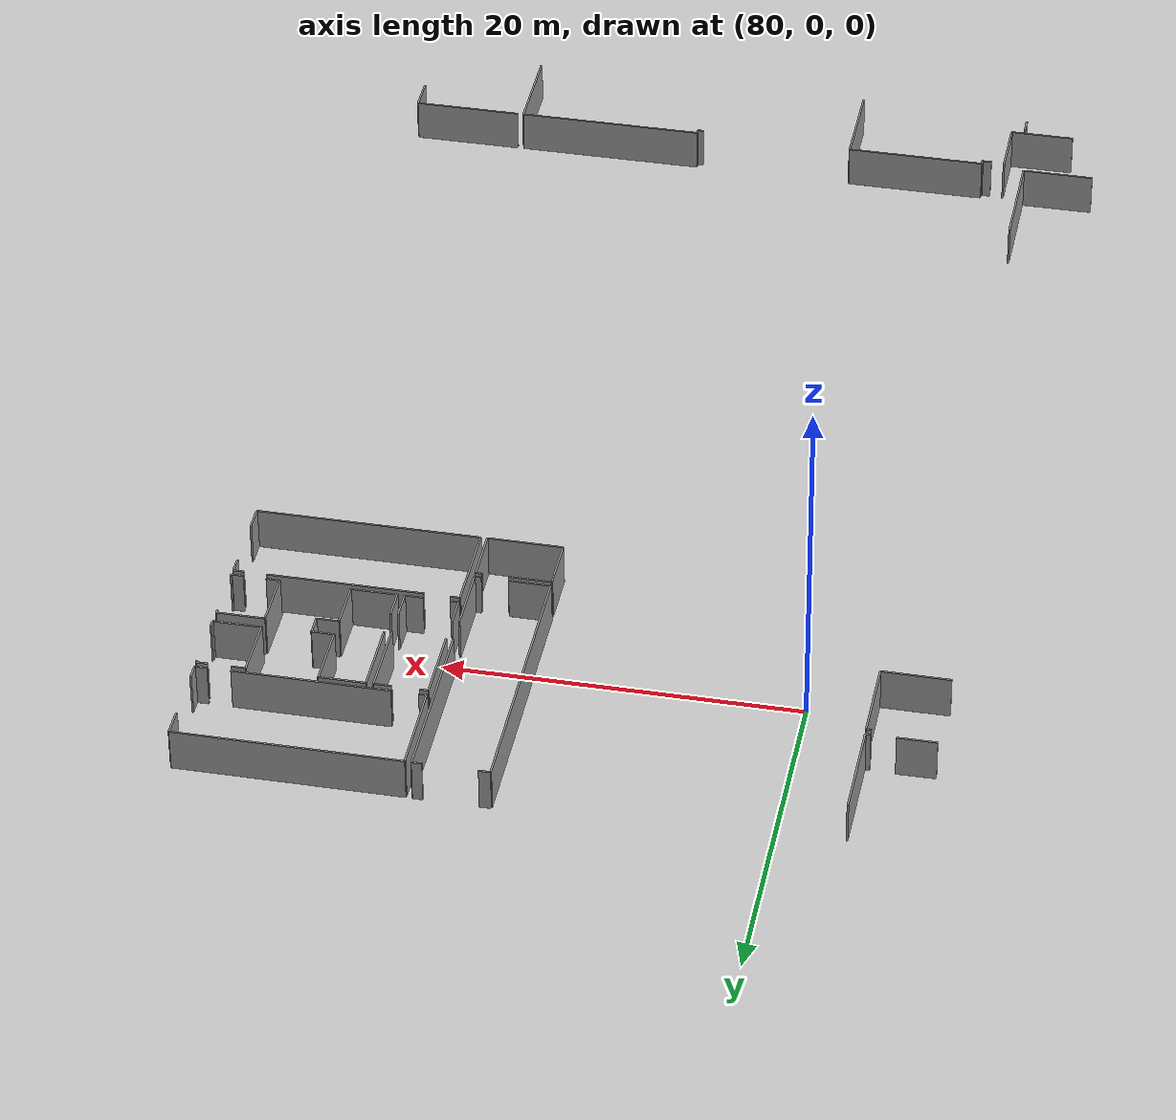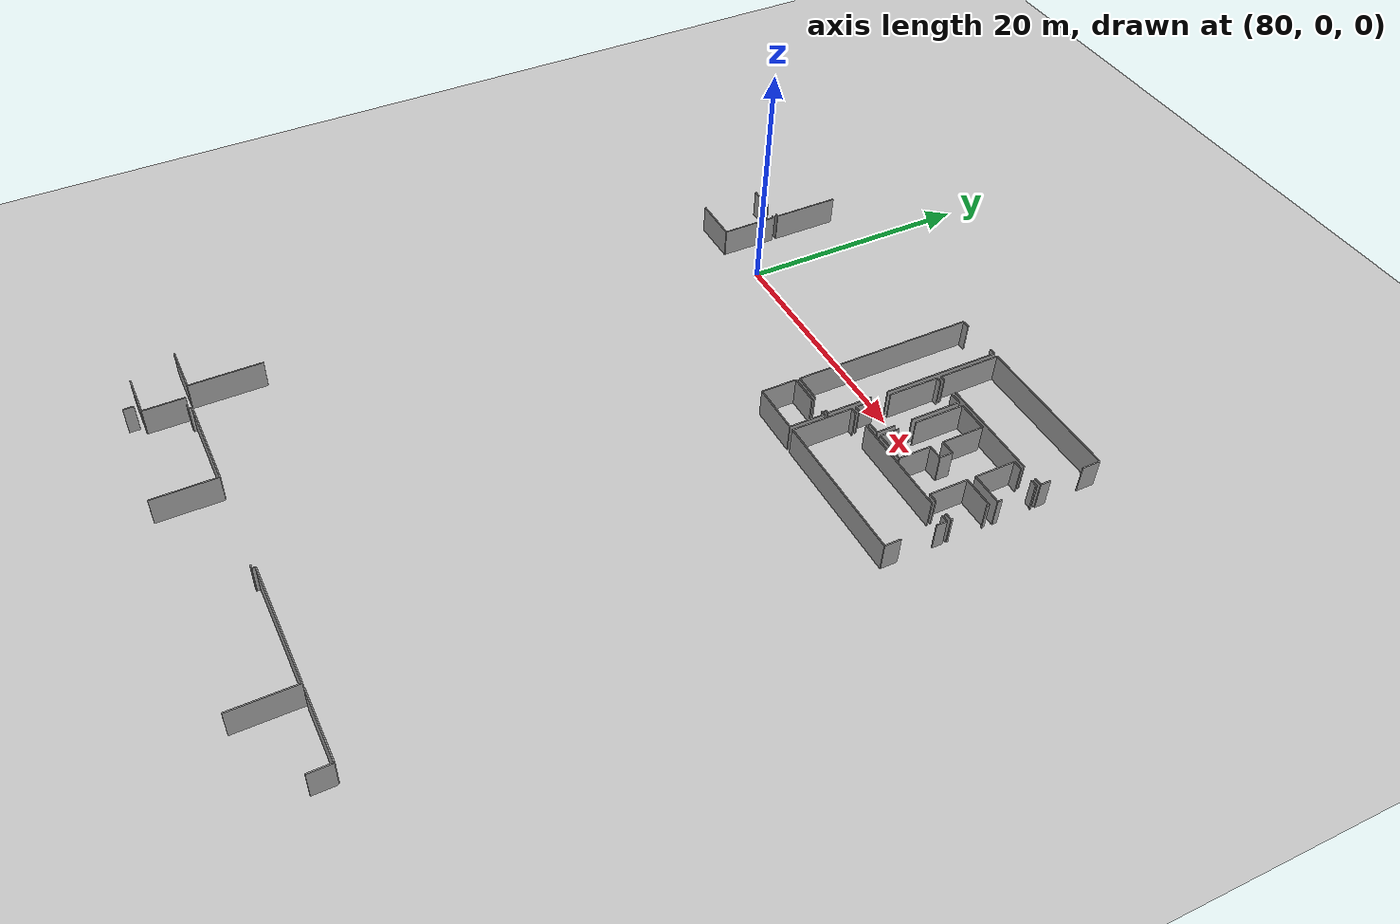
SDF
<sdf version="1.6">
 <world name="default">
  <model name="ground_plane">
   <static>1</static>
   <link name="link">
    <collision name="collision">
     <geometry><plane><normal>0 0 1</normal><size>100 100</size></plane></geometry>
     <surface><friction><ode><mu>100</mu><mu2>50</mu2></ode></friction></surface>
    </collision>
    <visual name="visual">
     <cast_shadows>0</cast_shadows>
     <geometry><plane><normal>0 0 1</normal><size>100 100</size></plane></geometry>
     <material>
      <script><uri>file://media/materials/scripts/gazebo.material</uri><name>Gazebo/Grey</name></script>
     </material>
    </visual>
   </link>
  </model>
  <model name="0510035520_A_40_1_103">
   <static>1</static>
   <link name="Wall_1028">
    <collision name="Wall_1028_Collision">
     <geometry><box><size>6.20046827114 0.1 2.5</size></box></geometry>
     <pose>3.10023413557 0 1.25 0 0 0</pose>
    </collision>
    <visual name="Wall_1028_Visual">
     <pose>3.10023413557 0 1.25 0 0 0</pose>
     <geometry><box><size>6.20046827114 0.1 2.5</size></box></geometry>
     <material>
      <script><uri>file://media/materials/scripts/gazebo.material</uri><name>Gazebo/Grey</name></script>
      <ambient>1 1 1 1</ambient>
     </material>
    </visual>
    <pose>218.241762425 -117.510421888 0 0 0 0.0</pose>
   </link>
   <link name="Wall_1029">
    <collision name="Wall_1029_Collision">
     <geometry><box><size>1.9091249421 0.1 2.5</size></box></geometry>
     <pose>0.95456247105 0 1.25 0 0 0</pose>
    </collision>
    <visual name="Wall_1029_Visual">
     <pose>0.95456247105 0 1.25 0 0 0</pose>
     <geometry><box><size>1.9091249421 0.1 2.5</size></box></geometry>
     <material>
      <script><uri>file://media/materials/scripts/gazebo.material</uri><name>Gazebo/Grey</name></script>
      <ambient>1 1 1 1</ambient>
     </material>
    </visual>
    <pose>224.442230697 -117.510421888 0 0 0 -1.57079632679</pose>
   </link>
   <link name="Wall_1033">
    <collision name="Wall_1033_Collision">
     <geometry><box><size>0.373601690345 0.1 2.5</size></box></geometry>
     <pose>0.186800845172 0 1.25 0 0 0</pose>
    </collision>
    <visual name="Wall_1033_Visual">
     <pose>0.186800845172 0 1.25 0 0 0</pose>
     <geometry><box><size>0.373601690345 0.1 2.5</size></box></geometry>
     <material>
      <script><uri>file://media/materials/scripts/gazebo.material</uri><name>Gazebo/Grey</name></script>
      <ambient>1 1 1 1</ambient>
     </material>
    </visual>
    <pose>206.805286768 -117.8157499 0 0 0 0.0</pose>
   </link>
   <link name="Wall_1034">
    <collision name="Wall_1034_Collision">
     <geometry><box><size>0.292891542566 0.1 2.5</size></box></geometry>
     <pose>0.146445771283 0 1.25 0 0 0</pose>
    </collision>
    <visual name="Wall_1034_Visual">
     <pose>0.146445771283 0 1.25 0 0 0</pose>
     <geometry><box><size>0.292891542566 0.1 2.5</size></box></geometry>
     <material>
      <script><uri>file://media/materials/scripts/gazebo.material</uri><name>Gazebo/Grey</name></script>
      <ambient>1 1 1 1</ambient>
     </material>
    </visual>
    <pose>207.178888459 -117.8157499 0 0 0 1.57079632679</pose>
   </link>
   <link name="Wall_1035">
    <collision name="Wall_1035_Collision">
     <geometry><box><size>10.7060234389 0.1 2.5</size></box></geometry>
     <pose>5.35301171947 0 1.25 0 0 0</pose>
    </collision>
    <visual name="Wall_1035_Visual">
     <pose>5.35301171947 0 1.25 0 0 0</pose>
     <geometry><box><size>10.7060234389 0.1 2.5</size></box></geometry>
     <material>
      <script><uri>file://media/materials/scripts/gazebo.material</uri><name>Gazebo/Grey</name></script>
      <ambient>1 1 1 1</ambient>
     </material>
    </visual>
    <pose>207.178888459 -117.522858357 0 0 0 0.0</pose>
   </link>
   <link name="Wall_1036">
    <collision name="Wall_1036_Collision">
     <geometry><box><size>5.36595579977 0.1 2.5</size></box></geometry>
     <pose>2.68297789989 0 1.25 0 0 0</pose>
    </collision>
    <visual name="Wall_1036_Visual">
     <pose>2.68297789989 0 1.25 0 0 0</pose>
     <geometry><box><size>5.36595579977 0.1 2.5</size></box></geometry>
     <material>
      <script><uri>file://media/materials/scripts/gazebo.material</uri><name>Gazebo/Grey</name></script>
      <ambient>1 1 1 1</ambient>
     </material>
    </visual>
    <pose>217.884911898 -117.522858357 0 0 0 -1.57079632679</pose>
   </link>
   <link name="Wall_1040">
    <collision name="Wall_1040_Collision">
     <geometry><box><size>0.544412789259 0.1 2.5</size></box></geometry>
     <pose>0.272206394629 0 1.25 0 0 0</pose>
    </collision>
    <visual name="Wall_1040_Visual">
     <pose>0.272206394629 0 1.25 0 0 0</pose>
     <geometry><box><size>0.544412789259 0.1 2.5</size></box></geometry>
     <material>
      <script><uri>file://media/materials/scripts/gazebo.material</uri><name>Gazebo/Grey</name></script>
      <ambient>1 1 1 1</ambient>
     </material>
    </visual>
    <pose>189.239408379 -117.799760154 0 0 0 0.0</pose>
   </link>
   <link name="Wall_1041">
    <collision name="Wall_1041_Collision">
     <geometry><box><size>0.284515961193 0.1 2.5</size></box></geometry>
     <pose>0.142257980597 0 1.25 0 0 0</pose>
    </collision>
    <visual name="Wall_1041_Visual">
     <pose>0.142257980597 0 1.25 0 0 0</pose>
     <geometry><box><size>0.284515961193 0.1 2.5</size></box></geometry>
     <material>
      <script><uri>file://media/materials/scripts/gazebo.material</uri><name>Gazebo/Grey</name></script>
      <ambient>1 1 1 1</ambient>
     </material>
    </visual>
    <pose>189.783821169 -117.799760154 0 0 0 1.57079632679</pose>
   </link>
   <link name="Wall_1042">
    <collision name="Wall_1042_Collision">
     <geometry><box><size>8.0263450105 0.1 2.5</size></box></geometry>
     <pose>4.01317250525 0 1.25 0 0 0</pose>
    </collision>
    <visual name="Wall_1042_Visual">
     <pose>4.01317250525 0 1.25 0 0 0</pose>
     <geometry><box><size>8.0263450105 0.1 2.5</size></box></geometry>
     <material>
      <script><uri>file://media/materials/scripts/gazebo.material</uri><name>Gazebo/Grey</name></script>
      <ambient>1 1 1 1</ambient>
     </material>
    </visual>
    <pose>189.783821169 -117.515244193 0 0 0 0.0</pose>
   </link>
   <link name="Wall_1043">
    <collision name="Wall_1043_Collision">
     <geometry><box><size>5.36773243825 0.1 2.5</size></box></geometry>
     <pose>2.68386621912 0 1.25 0 0 0</pose>
    </collision>
    <visual name="Wall_1043_Visual">
     <pose>2.68386621912 0 1.25 0 0 0</pose>
     <geometry><box><size>5.36773243825 0.1 2.5</size></box></geometry>
     <material>
      <script><uri>file://media/materials/scripts/gazebo.material</uri><name>Gazebo/Grey</name></script>
      <ambient>1 1 1 1</ambient>
     </material>
    </visual>
    <pose>197.810166179 -117.515244193 0 0 0 -1.57079632679</pose>
   </link>
   <link name="Wall_1047">
    <collision name="Wall_1047_Collision">
     <geometry><box><size>0.880705071668 0.1 2.5</size></box></geometry>
     <pose>0.440352535834 0 1.25 0 0 0</pose>
    </collision>
    <visual name="Wall_1047_Visual">
     <pose>0.440352535834 0 1.25 0 0 0</pose>
     <geometry><box><size>0.880705071668 0.1 2.5</size></box></geometry>
     <material>
      <script><uri>file://media/materials/scripts/gazebo.material</uri><name>Gazebo/Grey</name></script>
      <ambient>1 1 1 1</ambient>
     </material>
    </visual>
    <pose>187.722159123 -121.533239002 0 0 0 -1.57079632679</pose>
   </link>
   <link name="Wall_1052">
    <collision name="Wall_1052_Collision">
     <geometry><box><size>3.45860749615 0.1 2.5</size></box></geometry>
     <pose>1.72930374807 0 1.25 0 0 0</pose>
    </collision>
    <visual name="Wall_1052_Visual">
     <pose>1.72930374807 0 1.25 0 0 0</pose>
     <geometry><box><size>3.45860749615 0.1 2.5</size></box></geometry>
     <material>
      <script><uri>file://media/materials/scripts/gazebo.material</uri><name>Gazebo/Grey</name></script>
      <ambient>1 1 1 1</ambient>
     </material>
    </visual>
    <pose>188.470377726 -117.686055292 0 0 0 -1.57079632679</pose>
   </link>
   <link name="Wall_1053">
    <collision name="Wall_1053_Collision">
     <geometry><box><size>3.70962113185 0.1 2.5</size></box></geometry>
     <pose>1.85481056592 0 1.25 0 0 0</pose>
    </collision>
    <visual name="Wall_1053_Visual">
     <pose>1.85481056592 0 1.25 0 0 0</pose>
     <geometry><box><size>3.70962113185 0.1 2.5</size></box></geometry>
     <material>
      <script><uri>file://media/materials/scripts/gazebo.material</uri><name>Gazebo/Grey</name></script>
      <ambient>1 1 1 1</ambient>
     </material>
    </visual>
    <pose>188.470377726 -121.144662788 0 0 0 3.14159265359</pose>
   </link>
   <link name="Wall_1130">
    <collision name="Wall_1130_Collision">
     <geometry><box><size>6.15148381038 0.1 2.5</size></box></geometry>
     <pose>3.07574190519 0 1.25 0 0 0</pose>
    </collision>
    <visual name="Wall_1130_Visual">
     <pose>3.07574190519 0 1.25 0 0 0</pose>
     <geometry><box><size>6.15148381038 0.1 2.5</size></box></geometry>
     <material>
      <script><uri>file://media/materials/scripts/gazebo.material</uri><name>Gazebo/Grey</name></script>
      <ambient>1 1 1 1</ambient>
     </material>
    </visual>
    <pose>187.222416101 -111.095741778 0 0 0 -1.57079632679</pose>
   </link>
   <link name="Wall_1131">
    <collision name="Wall_1131_Collision">
     <geometry><box><size>4.13880622585 0.1 2.5</size></box></geometry>
     <pose>2.06940311292 0 1.25 0 0 0</pose>
    </collision>
    <visual name="Wall_1131_Visual">
     <pose>2.06940311292 0 1.25 0 0 0</pose>
     <geometry><box><size>4.13880622585 0.1 2.5</size></box></geometry>
     <material>
      <script><uri>file://media/materials/scripts/gazebo.material</uri><name>Gazebo/Grey</name></script>
      <ambient>1 1 1 1</ambient>
     </material>
    </visual>
    <pose>187.222416101 -117.247225589 0 0 0 3.14159265359</pose>
   </link>
   <link name="Wall_1167">
    <collision name="Wall_1167_Collision">
     <geometry><box><size>0.280455073255 0.1 2.5</size></box></geometry>
     <pose>0.140227536627 0 1.25 0 0 0</pose>
    </collision>
    <visual name="Wall_1167_Visual">
     <pose>0.140227536627 0 1.25 0 0 0</pose>
     <geometry><box><size>0.280455073255 0.1 2.5</size></box></geometry>
     <material>
      <script><uri>file://media/materials/scripts/gazebo.material</uri><name>Gazebo/Grey</name></script>
      <ambient>1 1 1 1</ambient>
     </material>
    </visual>
    <pose>188.199567262 -65.0442573334 0 0 0 0.0</pose>
   </link>
   <link name="Wall_1168">
    <collision name="Wall_1168_Collision">
     <geometry><box><size>4.78524882456 0.1 2.5</size></box></geometry>
     <pose>2.39262441228 0 1.25 0 0 0</pose>
    </collision>
    <visual name="Wall_1168_Visual">
     <pose>2.39262441228 0 1.25 0 0 0</pose>
     <geometry><box><size>4.78524882456 0.1 2.5</size></box></geometry>
     <material>
      <script><uri>file://media/materials/scripts/gazebo.material</uri><name>Gazebo/Grey</name></script>
      <ambient>1 1 1 1</ambient>
     </material>
    </visual>
    <pose>188.480022335 -65.0442573334 0 0 0 -1.57079632679</pose>
   </link>
   <link name="Wall_1169">
    <collision name="Wall_1169_Collision">
     <geometry><box><size>3.85759882861 0.1 2.5</size></box></geometry>
     <pose>1.9287994143 0 1.25 0 0 0</pose>
    </collision>
    <visual name="Wall_1169_Visual">
     <pose>1.9287994143 0 1.25 0 0 0</pose>
     <geometry><box><size>3.85759882861 0.1 2.5</size></box></geometry>
     <material>
      <script><uri>file://media/materials/scripts/gazebo.material</uri><name>Gazebo/Grey</name></script>
      <ambient>1 1 1 1</ambient>
     </material>
    </visual>
    <pose>188.480022335 -69.829506158 0 0 0 3.13942146153</pose>
   </link>
   <link name="Wall_1172">
    <collision name="Wall_1172_Collision">
     <geometry><box><size>5.73930368462 0.1 2.5</size></box></geometry>
     <pose>2.86965184231 0 1.25 0 0 0</pose>
    </collision>
    <visual name="Wall_1172_Visual">
     <pose>2.86965184231 0 1.25 0 0 0</pose>
     <geometry><box><size>5.73930368462 0.1 2.5</size></box></geometry>
     <material>
      <script><uri>file://media/materials/scripts/gazebo.material</uri><name>Gazebo/Grey</name></script>
      <ambient>1 1 1 1</ambient>
     </material>
    </visual>
    <pose>188.467078255 -58.9130779627 0 0 0 -1.57079632679</pose>
   </link>
   <link name="Wall_1173">
    <collision name="Wall_1173_Collision">
     <geometry><box><size>0.292130126078 0.1 2.5</size></box></geometry>
     <pose>0.146065063039 0 1.25 0 0 0</pose>
    </collision>
    <visual name="Wall_1173_Visual">
     <pose>0.146065063039 0 1.25 0 0 0</pose>
     <geometry><box><size>0.292130126078 0.1 2.5</size></box></geometry>
     <material>
      <script><uri>file://media/materials/scripts/gazebo.material</uri><name>Gazebo/Grey</name></script>
      <ambient>1 1 1 1</ambient>
     </material>
    </visual>
    <pose>188.467078255 -64.6523816473 0 0 0 3.14159265359</pose>
   </link>
   <link name="Wall_1174">
    <collision name="Wall_1174_Collision">
     <geometry><box><size>2.19290664441 0.1 2.5</size></box></geometry>
     <pose>1.09645332221 0 1.25 0 0 0</pose>
    </collision>
    <visual name="Wall_1174_Visual">
     <pose>1.09645332221 0 1.25 0 0 0</pose>
     <geometry><box><size>2.19290664441 0.1 2.5</size></box></geometry>
     <material>
      <script><uri>file://media/materials/scripts/gazebo.material</uri><name>Gazebo/Grey</name></script>
      <ambient>1 1 1 1</ambient>
     </material>
    </visual>
    <pose>186.805667477 -64.6523816473 0 0 0 -3.13661584283</pose>
   </link>
   <link name="Wall_1175">
    <collision name="Wall_1175_Collision">
     <geometry><box><size>3.05353392428 0.1 2.5</size></box></geometry>
     <pose>1.52676696214 0 1.25 0 0 0</pose>
    </collision>
    <visual name="Wall_1175_Visual">
     <pose>1.52676696214 0 1.25 0 0 0</pose>
     <geometry><box><size>3.05353392428 0.1 2.5</size></box></geometry>
     <material>
      <script><uri>file://media/materials/scripts/gazebo.material</uri><name>Gazebo/Grey</name></script>
      <ambient>1 1 1 1</ambient>
     </material>
    </visual>
    <pose>207.179903681 -76.9746384858 0 0 0 1.57079632679</pose>
   </link>
   <link name="Wall_1176">
    <collision name="Wall_1176_Collision">
     <geometry><box><size>2.42257346083 0.1 2.5</size></box></geometry>
     <pose>1.21128673041 0 1.25 0 0 0</pose>
    </collision>
    <visual name="Wall_1176_Visual">
     <pose>1.21128673041 0 1.25 0 0 0</pose>
     <geometry><box><size>2.42257346083 0.1 2.5</size></box></geometry>
     <material>
      <script><uri>file://media/materials/scripts/gazebo.material</uri><name>Gazebo/Grey</name></script>
      <ambient>1 1 1 1</ambient>
     </material>
    </visual>
    <pose>207.179903681 -73.9211045615 0 0 0 0.0</pose>
   </link>
   <link name="Wall_1177">
    <collision name="Wall_1177_Collision">
     <geometry><box><size>0.359896193552 0.1 2.5</size></box></geometry>
     <pose>0.179948096776 0 1.25 0 0 0</pose>
    </collision>
    <visual name="Wall_1177_Visual">
     <pose>0.179948096776 0 1.25 0 0 0</pose>
     <geometry><box><size>0.359896193552 0.1 2.5</size></box></geometry>
     <material>
      <script><uri>file://media/materials/scripts/gazebo.material</uri><name>Gazebo/Grey</name></script>
      <ambient>1 1 1 1</ambient>
     </material>
    </visual>
    <pose>211.065919632 -73.9211045615 0 0 0 0.0</pose>
   </link>
   <link name="Wall_1178">
    <collision name="Wall_1178_Collision">
     <geometry><box><size>3.06038667267 0.1 2.5</size></box></geometry>
     <pose>1.53019333634 0 1.25 0 0 0</pose>
    </collision>
    <visual name="Wall_1178_Visual">
     <pose>1.53019333634 0 1.25 0 0 0</pose>
     <geometry><box><size>3.06038667267 0.1 2.5</size></box></geometry>
     <material>
      <script><uri>file://media/materials/scripts/gazebo.material</uri><name>Gazebo/Grey</name></script>
      <ambient>1 1 1 1</ambient>
     </material>
    </visual>
    <pose>211.425815826 -73.9211045615 0 0 0 -1.57079632679</pose>
   </link>
   <link name="Wall_1179">
    <collision name="Wall_1179_Collision">
     <geometry><box><size>4.24591767527 0.1 2.5</size></box></geometry>
     <pose>2.12295883763 0 1.25 0 0 0</pose>
    </collision>
    <visual name="Wall_1179_Visual">
     <pose>2.12295883763 0 1.25 0 0 0</pose>
     <geometry><box><size>4.24591767527 0.1 2.5</size></box></geometry>
     <material>
      <script><uri>file://media/materials/scripts/gazebo.material</uri><name>Gazebo/Grey</name></script>
      <ambient>1 1 1 1</ambient>
     </material>
    </visual>
    <pose>211.425815826 -76.9814912342 0 0 0 3.13997869122</pose>
   </link>
   <link name="Wall_1180">
    <collision name="Wall_1180_Collision">
     <geometry><box><size>15.5740128552 0.1 2.5</size></box></geometry>
     <pose>7.78700642762 0 1.25 0 0 0</pose>
    </collision>
    <visual name="Wall_1180_Visual">
     <pose>7.78700642762 0 1.25 0 0 0</pose>
     <geometry><box><size>15.5740128552 0.1 2.5</size></box></geometry>
     <material>
      <script><uri>file://media/materials/scripts/gazebo.material</uri><name>Gazebo/Grey</name></script>
      <ambient>1 1 1 1</ambient>
     </material>
    </visual>
    <pose>207.179142264 -73.5876041396 0 0 0 1.57079632679</pose>
   </link>
   <link name="Wall_1181">
    <collision name="Wall_1181_Collision">
     <geometry><box><size>0.649995875661 0.1 2.5</size></box></geometry>
     <pose>0.32499793783 0 1.25 0 0 0</pose>
    </collision>
    <visual name="Wall_1181_Visual">
     <pose>0.32499793783 0 1.25 0 0 0</pose>
     <geometry><box><size>0.649995875661 0.1 2.5</size></box></geometry>
     <material>
      <script><uri>file://media/materials/scripts/gazebo.material</uri><name>Gazebo/Grey</name></script>
      <ambient>1 1 1 1</ambient>
     </material>
    </visual>
    <pose>207.179142264 -58.0135912843 0 0 0 0.0</pose>
   </link>
   <link name="Wall_1182">
    <collision name="Wall_1182_Collision">
     <geometry><box><size>0.561925368494 0.1 2.5</size></box></geometry>
     <pose>0.280962684247 0 1.25 0 0 0</pose>
    </collision>
    <visual name="Wall_1182_Visual">
     <pose>0.280962684247 0 1.25 0 0 0</pose>
     <geometry><box><size>0.561925368494 0.1 2.5</size></box></geometry>
     <material>
      <script><uri>file://media/materials/scripts/gazebo.material</uri><name>Gazebo/Grey</name></script>
      <ambient>1 1 1 1</ambient>
     </material>
    </visual>
    <pose>210.847646906 -58.0135912843 0 0 0 0.0</pose>
   </link>
   <link name="Wall_1183">
    <collision name="Wall_1183_Collision">
     <geometry><box><size>10.1545040958 0.1 2.5</size></box></geometry>
     <pose>5.07725204789 0 1.25 0 0 0</pose>
    </collision>
    <visual name="Wall_1183_Visual">
     <pose>5.07725204789 0 1.25 0 0 0</pose>
     <geometry><box><size>10.1545040958 0.1 2.5</size></box></geometry>
     <material>
      <script><uri>file://media/materials/scripts/gazebo.material</uri><name>Gazebo/Grey</name></script>
      <ambient>1 1 1 1</ambient>
     </material>
    </visual>
    <pose>211.409572274 -58.0135912843 0 0 0 -1.57079632679</pose>
   </link>
   <link name="Wall_1184">
    <collision name="Wall_1184_Collision">
     <geometry><box><size>3.92611722007 0.1 2.5</size></box></geometry>
     <pose>1.96305861003 0 1.25 0 0 0</pose>
    </collision>
    <visual name="Wall_1184_Visual">
     <pose>1.96305861003 0 1.25 0 0 0</pose>
     <geometry><box><size>3.92611722007 0.1 2.5</size></box></geometry>
     <material>
      <script><uri>file://media/materials/scripts/gazebo.material</uri><name>Gazebo/Grey</name></script>
      <ambient>1 1 1 1</ambient>
     </material>
    </visual>
    <pose>211.409572274 -69.6767152493 0 0 0 -1.57079632679</pose>
   </link>
   <link name="Wall_1185">
    <collision name="Wall_1185_Collision">
     <geometry><box><size>0.374616912329 0.1 2.5</size></box></geometry>
     <pose>0.187308456165 0 1.25 0 0 0</pose>
    </collision>
    <visual name="Wall_1185_Visual">
     <pose>0.187308456165 0 1.25 0 0 0</pose>
     <geometry><box><size>0.374616912329 0.1 2.5</size></box></geometry>
     <material>
      <script><uri>file://media/materials/scripts/gazebo.material</uri><name>Gazebo/Grey</name></script>
      <ambient>1 1 1 1</ambient>
     </material>
    </visual>
    <pose>211.409572274 -73.6028324693 0 0 0 3.14159265359</pose>
   </link>
   <link name="Wall_1186">
    <collision name="Wall_1186_Collision">
     <geometry><box><size>2.33861342322 0.1 2.5</size></box></geometry>
     <pose>1.16930671161 0 1.25 0 0 0</pose>
    </collision>
    <visual name="Wall_1186_Visual">
     <pose>1.16930671161 0 1.25 0 0 0</pose>
     <geometry><box><size>2.33861342322 0.1 2.5</size></box></geometry>
     <material>
      <script><uri>file://media/materials/scripts/gazebo.material</uri><name>Gazebo/Grey</name></script>
      <ambient>1 1 1 1</ambient>
     </material>
    </visual>
    <pose>209.517706106 -73.6028324693 0 0 0 3.13508091581</pose>
   </link>
   <link name="Wall_1187">
    <collision name="Wall_1187_Collision">
     <geometry><box><size>1.66674069327 0.1 2.5</size></box></geometry>
     <pose>0.833370346635 0 1.25 0 0 0</pose>
    </collision>
    <visual name="Wall_1187_Visual">
     <pose>0.833370346635 0 1.25 0 0 0</pose>
     <geometry><box><size>1.66674069327 0.1 2.5</size></box></geometry>
     <material>
      <script><uri>file://media/materials/scripts/gazebo.material</uri><name>Gazebo/Grey</name></script>
      <ambient>1 1 1 1</ambient>
     </material>
    </visual>
    <pose>211.794087601 -71.3003090082 0 0 0 1.57079632679</pose>
   </link>
   <link name="Wall_1188">
    <collision name="Wall_1188_Collision">
     <geometry><box><size>4.33880495682 0.1 2.5</size></box></geometry>
     <pose>2.16940247841 0 1.25 0 0 0</pose>
    </collision>
    <visual name="Wall_1188_Visual">
     <pose>2.16940247841 0 1.25 0 0 0</pose>
     <geometry><box><size>4.33880495682 0.1 2.5</size></box></geometry>
     <material>
      <script><uri>file://media/materials/scripts/gazebo.material</uri><name>Gazebo/Grey</name></script>
      <ambient>1 1 1 1</ambient>
     </material>
    </visual>
    <pose>211.794087601 -68.1493137734 0 0 0 1.57079632679</pose>
   </link>
   <link name="Wall_1189">
    <collision name="Wall_1189_Collision">
     <geometry><box><size>0.49415930102 0.1 2.5</size></box></geometry>
     <pose>0.24707965051 0 1.25 0 0 0</pose>
    </collision>
    <visual name="Wall_1189_Visual">
     <pose>0.24707965051 0 1.25 0 0 0</pose>
     <geometry><box><size>0.49415930102 0.1 2.5</size></box></geometry>
     <material>
      <script><uri>file://media/materials/scripts/gazebo.material</uri><name>Gazebo/Grey</name></script>
      <ambient>1 1 1 1</ambient>
     </material>
    </visual>
    <pose>211.794087601 -63.8105088166 0 0 0 0.0</pose>
   </link>
   <link name="Wall_1190">
    <collision name="Wall_1190_Collision">
     <geometry><box><size>1.0038007373 0.1 2.5</size></box></geometry>
     <pose>0.501900368652 0 1.25 0 0 0</pose>
    </collision>
    <visual name="Wall_1190_Visual">
     <pose>0.501900368652 0 1.25 0 0 0</pose>
     <geometry><box><size>1.0038007373 0.1 2.5</size></box></geometry>
     <material>
      <script><uri>file://media/materials/scripts/gazebo.material</uri><name>Gazebo/Grey</name></script>
      <ambient>1 1 1 1</ambient>
     </material>
    </visual>
    <pose>213.782653663 -63.8105088166 0 0 0 0.0</pose>
   </link>
   <link name="Wall_1191">
    <collision name="Wall_1191_Collision">
     <geometry><box><size>4.37459153178 0.1 2.5</size></box></geometry>
     <pose>2.18729576589 0 1.25 0 0 0</pose>
    </collision>
    <visual name="Wall_1191_Visual">
     <pose>2.18729576589 0 1.25 0 0 0</pose>
     <geometry><box><size>4.37459153178 0.1 2.5</size></box></geometry>
     <material>
      <script><uri>file://media/materials/scripts/gazebo.material</uri><name>Gazebo/Grey</name></script>
      <ambient>1 1 1 1</ambient>
     </material>
    </visual>
    <pose>214.786454401 -63.8105088166 0 0 0 -1.57079632679</pose>
   </link>
   <link name="Wall_1192">
    <collision name="Wall_1192_Collision">
     <geometry><box><size>1.62638561938 0.1 2.5</size></box></geometry>
     <pose>0.81319280969 0 1.25 0 0 0</pose>
    </collision>
    <visual name="Wall_1192_Visual">
     <pose>0.81319280969 0 1.25 0 0 0</pose>
     <geometry><box><size>1.62638561938 0.1 2.5</size></box></geometry>
     <material>
      <script><uri>file://media/materials/scripts/gazebo.material</uri><name>Gazebo/Grey</name></script>
      <ambient>1 1 1 1</ambient>
     </material>
    </visual>
    <pose>214.786454401 -69.6888979131 0 0 0 -1.57079632679</pose>
   </link>
   <link name="Wall_1193">
    <collision name="Wall_1193_Collision">
     <geometry><box><size>1.02765845394 0.1 2.5</size></box></geometry>
     <pose>0.513829226972 0 1.25 0 0 0</pose>
    </collision>
    <visual name="Wall_1193_Visual">
     <pose>0.513829226972 0 1.25 0 0 0</pose>
     <geometry><box><size>1.02765845394 0.1 2.5</size></box></geometry>
     <material>
      <script><uri>file://media/materials/scripts/gazebo.material</uri><name>Gazebo/Grey</name></script>
      <ambient>1 1 1 1</ambient>
     </material>
    </visual>
    <pose>214.786454401 -71.3152835325 0 0 0 3.14159265359</pose>
   </link>
   <link name="Wall_1194">
    <collision name="Wall_1194_Collision">
     <geometry><box><size>0.462687419496 0.1 2.5</size></box></geometry>
     <pose>0.231343709748 0 1.25 0 0 0</pose>
    </collision>
    <visual name="Wall_1194_Visual">
     <pose>0.231343709748 0 1.25 0 0 0</pose>
     <geometry><box><size>0.462687419496 0.1 2.5</size></box></geometry>
     <material>
      <script><uri>file://media/materials/scripts/gazebo.material</uri><name>Gazebo/Grey</name></script>
      <ambient>1 1 1 1</ambient>
     </material>
    </visual>
    <pose>212.25905927 -71.3152835325 0 0 0 3.14159265359</pose>
   </link>
   <link name="Wall_1195">
    <collision name="Wall_1195_Collision">
     <geometry><box><size>0.0151477448101 0.1 2.5</size></box></geometry>
     <pose>0.00757387240506 0 1.25 0 0 0</pose>
    </collision>
    <visual name="Wall_1195_Visual">
     <pose>0.00757387240506 0 1.25 0 0 0</pose>
     <geometry><box><size>0.0151477448101 0.1 2.5</size></box></geometry>
     <material>
      <script><uri>file://media/materials/scripts/gazebo.material</uri><name>Gazebo/Grey</name></script>
      <ambient>1 1 1 1</ambient>
     </material>
    </visual>
    <pose>211.79637185 -71.3152835325 0 0 0 1.72217177053</pose>
   </link>
   <link name="Wall_1196">
    <collision name="Wall_1196_Collision">
     <geometry><box><size>5.29971256528 0.1 2.5</size></box></geometry>
     <pose>2.64985628264 0 1.25 0 0 0</pose>
    </collision>
    <visual name="Wall_1196_Visual">
     <pose>2.64985628264 0 1.25 0 0 0</pose>
     <geometry><box><size>5.29971256528 0.1 2.5</size></box></geometry>
     <material>
      <script><uri>file://media/materials/scripts/gazebo.material</uri><name>Gazebo/Grey</name></script>
      <ambient>1 1 1 1</ambient>
     </material>
    </visual>
    <pose>211.799671322 -76.9746384858 0 0 0 1.57079632679</pose>
   </link>
   <link name="Wall_1197">
    <collision name="Wall_1197_Collision">
     <geometry><box><size>0.524869766055 0.1 2.5</size></box></geometry>
     <pose>0.262434883027 0 1.25 0 0 0</pose>
    </collision>
    <visual name="Wall_1197_Visual">
     <pose>0.262434883027 0 1.25 0 0 0</pose>
     <geometry><box><size>0.524869766055 0.1 2.5</size></box></geometry>
     <material>
      <script><uri>file://media/materials/scripts/gazebo.material</uri><name>Gazebo/Grey</name></script>
      <ambient>1 1 1 1</ambient>
     </material>
    </visual>
    <pose>211.799671322 -71.6749259205 0 0 0 0.0</pose>
   </link>
   <link name="Wall_1198">
    <collision name="Wall_1198_Collision">
     <geometry><box><size>8.75502058997 0.1 2.5</size></box></geometry>
     <pose>4.37751029499 0 1.25 0 0 0</pose>
    </collision>
    <visual name="Wall_1198_Visual">
     <pose>4.37751029499 0 1.25 0 0 0</pose>
     <geometry><box><size>8.75502058997 0.1 2.5</size></box></geometry>
     <material>
      <script><uri>file://media/materials/scripts/gazebo.material</uri><name>Gazebo/Grey</name></script>
      <ambient>1 1 1 1</ambient>
     </material>
    </visual>
    <pose>213.798897215 -71.6749259205 0 0 0 0.0</pose>
   </link>
   <link name="Wall_1199">
    <collision name="Wall_1199_Collision">
     <geometry><box><size>0.606595135818 0.1 2.5</size></box></geometry>
     <pose>0.303297567909 0 1.25 0 0 0</pose>
    </collision>
    <visual name="Wall_1199_Visual">
     <pose>0.303297567909 0 1.25 0 0 0</pose>
     <geometry><box><size>0.606595135818 0.1 2.5</size></box></geometry>
     <material>
      <script><uri>file://media/materials/scripts/gazebo.material</uri><name>Gazebo/Grey</name></script>
      <ambient>1 1 1 1</ambient>
     </material>
    </visual>
    <pose>223.835635561 -71.6749259205 0 0 0 0.0</pose>
   </link>
   <link name="Wall_1200">
    <collision name="Wall_1200_Collision">
     <geometry><box><size>0.894156762965 0.1 2.5</size></box></geometry>
     <pose>0.447078381482 0 1.25 0 0 0</pose>
    </collision>
    <visual name="Wall_1200_Visual">
     <pose>0.447078381482 0 1.25 0 0 0</pose>
     <geometry><box><size>0.894156762965 0.1 2.5</size></box></geometry>
     <material>
      <script><uri>file://media/materials/scripts/gazebo.material</uri><name>Gazebo/Grey</name></script>
      <ambient>1 1 1 1</ambient>
     </material>
    </visual>
    <pose>224.442230697 -71.6749259205 0 0 0 -1.57079632679</pose>
   </link>
   <link name="Wall_1201">
    <collision name="Wall_1201_Collision">
     <geometry><box><size>1.40252917177 0.1 2.5</size></box></geometry>
     <pose>0.701264585885 0 1.25 0 0 0</pose>
    </collision>
    <visual name="Wall_1201_Visual">
     <pose>0.701264585885 0 1.25 0 0 0</pose>
     <geometry><box><size>1.40252917177 0.1 2.5</size></box></geometry>
     <material>
      <script><uri>file://media/materials/scripts/gazebo.material</uri><name>Gazebo/Grey</name></script>
      <ambient>1 1 1 1</ambient>
     </material>
    </visual>
    <pose>224.442230697 -75.5677946206 0 0 0 -1.57079632679</pose>
   </link>
   <link name="Wall_1202">
    <collision name="Wall_1202_Collision">
     <geometry><box><size>12.6425601109 0.1 2.5</size></box></geometry>
     <pose>6.32128005544 0 1.25 0 0 0</pose>
    </collision>
    <visual name="Wall_1202_Visual">
     <pose>6.32128005544 0 1.25 0 0 0</pose>
     <geometry><box><size>12.6425601109 0.1 2.5</size></box></geometry>
     <material>
      <script><uri>file://media/materials/scripts/gazebo.material</uri><name>Gazebo/Grey</name></script>
      <ambient>1 1 1 1</ambient>
     </material>
    </visual>
    <pose>224.442230697 -76.9703237924 0 0 0 -3.14125137038</pose>
   </link>
   <link name="Wall_1203">
    <collision name="Wall_1203_Collision">
     <geometry><box><size>12.7062645542 0.1 2.5</size></box></geometry>
     <pose>6.35313227708 0 1.25 0 0 0</pose>
    </collision>
    <visual name="Wall_1203_Visual">
     <pose>6.35313227708 0 1.25 0 0 0</pose>
     <geometry><box><size>12.7062645542 0.1 2.5</size></box></geometry>
     <material>
      <script><uri>file://media/materials/scripts/gazebo.material</uri><name>Gazebo/Grey</name></script>
      <ambient>1 1 1 1</ambient>
     </material>
    </visual>
    <pose>211.768960857 -58.0313576691 0 0 0 0.0</pose>
   </link>
   <link name="Wall_1204">
    <collision name="Wall_1204_Collision">
     <geometry><box><size>1.55303583099 0.1 2.5</size></box></geometry>
     <pose>0.776517915495 0 1.25 0 0 0</pose>
    </collision>
    <visual name="Wall_1204_Visual">
     <pose>0.776517915495 0 1.25 0 0 0</pose>
     <geometry><box><size>1.55303583099 0.1 2.5</size></box></geometry>
     <material>
      <script><uri>file://media/materials/scripts/gazebo.material</uri><name>Gazebo/Grey</name></script>
      <ambient>1 1 1 1</ambient>
     </material>
    </visual>
    <pose>224.475225411 -58.0313576691 0 0 0 -1.57079632679</pose>
   </link>
   <link name="Wall_1205">
    <collision name="Wall_1205_Collision">
     <geometry><box><size>0.887304014568 0.1 2.5</size></box></geometry>
     <pose>0.443652007284 0 1.25 0 0 0</pose>
    </collision>
    <visual name="Wall_1205_Visual">
     <pose>0.443652007284 0 1.25 0 0 0</pose>
     <geometry><box><size>0.887304014568 0.1 2.5</size></box></geometry>
     <material>
      <script><uri>file://media/materials/scripts/gazebo.material</uri><name>Gazebo/Grey</name></script>
      <ambient>1 1 1 1</ambient>
     </material>
    </visual>
    <pose>224.475225411 -62.5437655852 0 0 0 -1.57079632679</pose>
   </link>
   <link name="Wall_1206">
    <collision name="Wall_1206_Collision">
     <geometry><box><size>0.672584564819 0.1 2.5</size></box></geometry>
     <pose>0.336292282409 0 1.25 0 0 0</pose>
    </collision>
    <visual name="Wall_1206_Visual">
     <pose>0.336292282409 0 1.25 0 0 0</pose>
     <geometry><box><size>0.672584564819 0.1 2.5</size></box></geometry>
     <material>
      <script><uri>file://media/materials/scripts/gazebo.material</uri><name>Gazebo/Grey</name></script>
      <ambient>1 1 1 1</ambient>
     </material>
    </visual>
    <pose>224.475225411 -63.4310695998 0 0 0 3.14159265359</pose>
   </link>
   <link name="Wall_1207">
    <collision name="Wall_1207_Collision">
     <geometry><box><size>8.74892925806 0.1 2.5</size></box></geometry>
     <pose>4.37446462903 0 1.25 0 0 0</pose>
    </collision>
    <visual name="Wall_1207_Visual">
     <pose>4.37446462903 0 1.25 0 0 0</pose>
     <geometry><box><size>8.74892925806 0.1 2.5</size></box></geometry>
     <material>
      <script><uri>file://media/materials/scripts/gazebo.material</uri><name>Gazebo/Grey</name></script>
      <ambient>1 1 1 1</ambient>
     </material>
    </visual>
    <pose>222.498080596 -63.4310695998 0 0 0 3.14159265359</pose>
   </link>
   <link name="Wall_1208">
    <collision name="Wall_1208_Collision">
     <geometry><box><size>0.426393233545 0.1 2.5</size></box></geometry>
     <pose>0.213196616773 0 1.25 0 0 0</pose>
    </collision>
    <visual name="Wall_1208_Visual">
     <pose>0.213196616773 0 1.25 0 0 0</pose>
     <geometry><box><size>0.426393233545 0.1 2.5</size></box></geometry>
     <material>
      <script><uri>file://media/materials/scripts/gazebo.material</uri><name>Gazebo/Grey</name></script>
      <ambient>1 1 1 1</ambient>
     </material>
    </visual>
    <pose>212.233171109 -63.4310695998 0 0 0 3.14159265359</pose>
   </link>
   <link name="Wall_1209">
    <collision name="Wall_1209_Collision">
     <geometry><box><size>5.39984435536 0.1 2.5</size></box></geometry>
     <pose>2.69992217768 0 1.25 0 0 0</pose>
    </collision>
    <visual name="Wall_1209_Visual">
     <pose>2.69992217768 0 1.25 0 0 0</pose>
     <geometry><box><size>5.39984435536 0.1 2.5</size></box></geometry>
     <material>
      <script><uri>file://media/materials/scripts/gazebo.material</uri><name>Gazebo/Grey</name></script>
      <ambient>1 1 1 1</ambient>
     </material>
    </visual>
    <pose>211.806777876 -63.4310695998 0 0 0 1.57779973756</pose>
   </link>
   <link name="Wall_1210">
    <collision name="Wall_1210_Collision">
     <geometry><box><size>1.67384724716 0.1 2.5</size></box></geometry>
     <pose>0.836923623581 0 1.25 0 0 0</pose>
    </collision>
    <visual name="Wall_1210_Visual">
     <pose>0.836923623581 0 1.25 0 0 0</pose>
     <geometry><box><size>1.67384724716 0.1 2.5</size></box></geometry>
     <material>
      <script><uri>file://media/materials/scripts/gazebo.material</uri><name>Gazebo/Grey</name></script>
      <ambient>1 1 1 1</ambient>
     </material>
    </visual>
    <pose>215.193812222 -71.3066541456 0 0 0 1.57079632679</pose>
   </link>
   <link name="Wall_1211">
    <collision name="Wall_1211_Collision">
     <geometry><box><size>4.30530263133 0.1 2.5</size></box></geometry>
     <pose>2.15265131566 0 1.25 0 0 0</pose>
    </collision>
    <visual name="Wall_1211_Visual">
     <pose>2.15265131566 0 1.25 0 0 0</pose>
     <geometry><box><size>4.30530263133 0.1 2.5</size></box></geometry>
     <material>
      <script><uri>file://media/materials/scripts/gazebo.material</uri><name>Gazebo/Grey</name></script>
      <ambient>1 1 1 1</ambient>
     </material>
    </visual>
    <pose>215.193812222 -68.1036287841 0 0 0 1.57079632679</pose>
   </link>
   <link name="Wall_1212">
    <collision name="Wall_1212_Collision">
     <geometry><box><size>2.5959226147 0.1 2.5</size></box></geometry>
     <pose>1.29796130735 0 1.25 0 0 0</pose>
    </collision>
    <visual name="Wall_1212_Visual">
     <pose>1.29796130735 0 1.25 0 0 0</pose>
     <geometry><box><size>2.5959226147 0.1 2.5</size></box></geometry>
     <material>
      <script><uri>file://media/materials/scripts/gazebo.material</uri><name>Gazebo/Grey</name></script>
      <ambient>1 1 1 1</ambient>
     </material>
    </visual>
    <pose>215.193812222 -63.7983261528 0 0 0 0.0</pose>
   </link>
   <link name="Wall_1213">
    <collision name="Wall_1213_Collision">
     <geometry><box><size>3.60911415537 0.1 2.5</size></box></geometry>
     <pose>1.80455707768 0 1.25 0 0 0</pose>
    </collision>
    <visual name="Wall_1213_Visual">
     <pose>1.80455707768 0 1.25 0 0 0</pose>
     <geometry><box><size>3.60911415537 0.1 2.5</size></box></geometry>
     <material>
      <script><uri>file://media/materials/scripts/gazebo.material</uri><name>Gazebo/Grey</name></script>
      <ambient>1 1 1 1</ambient>
     </material>
    </visual>
    <pose>217.789734837 -63.7983261528 0 0 0 -1.57079632679</pose>
   </link>
   <link name="Wall_1214">
    <collision name="Wall_1214_Collision">
     <geometry><box><size>1.23628657179 0.1 2.5</size></box></geometry>
     <pose>0.618143285893 0 1.25 0 0 0</pose>
    </collision>
    <visual name="Wall_1214_Visual">
     <pose>0.618143285893 0 1.25 0 0 0</pose>
     <geometry><box><size>1.23628657179 0.1 2.5</size></box></geometry>
     <material>
      <script><uri>file://media/materials/scripts/gazebo.material</uri><name>Gazebo/Grey</name></script>
      <ambient>1 1 1 1</ambient>
     </material>
    </visual>
    <pose>217.789734837 -67.4074403081 0 0 0 0.0</pose>
   </link>
   <link name="Wall_1215">
    <collision name="Wall_1215_Collision">
     <geometry><box><size>1.12385073699 0.1 2.5</size></box></geometry>
     <pose>0.561925368494 0 1.25 0 0 0</pose>
    </collision>
    <visual name="Wall_1215_Visual">
     <pose>0.561925368494 0 1.25 0 0 0</pose>
     <geometry><box><size>1.12385073699 0.1 2.5</size></box></geometry>
     <material>
      <script><uri>file://media/materials/scripts/gazebo.material</uri><name>Gazebo/Grey</name></script>
      <ambient>1 1 1 1</ambient>
     </material>
    </visual>
    <pose>219.026021408 -67.4074403081 0 0 0 -1.57079632679</pose>
   </link>
   <link name="Wall_1216">
    <collision name="Wall_1216_Collision">
     <geometry><box><size>1.24466215316 0.1 2.5</size></box></geometry>
     <pose>0.622331076579 0 1.25 0 0 0</pose>
    </collision>
    <visual name="Wall_1216_Visual">
     <pose>0.622331076579 0 1.25 0 0 0</pose>
     <geometry><box><size>1.24466215316 0.1 2.5</size></box></geometry>
     <material>
      <script><uri>file://media/materials/scripts/gazebo.material</uri><name>Gazebo/Grey</name></script>
      <ambient>1 1 1 1</ambient>
     </material>
    </visual>
    <pose>219.026021408 -68.5312910451 0 0 0 3.14159265359</pose>
   </link>
   <link name="Wall_1217">
    <collision name="Wall_1217_Collision">
     <geometry><box><size>2.7814544324 0.1 2.5</size></box></geometry>
     <pose>1.3907272162 0 1.25 0 0 0</pose>
    </collision>
    <visual name="Wall_1217_Visual">
     <pose>1.3907272162 0 1.25 0 0 0</pose>
     <geometry><box><size>2.7814544324 0.1 2.5</size></box></geometry>
     <material>
      <script><uri>file://media/materials/scripts/gazebo.material</uri><name>Gazebo/Grey</name></script>
      <ambient>1 1 1 1</ambient>
     </material>
    </visual>
    <pose>217.781359255 -68.5312910451 0 0 0 -1.57079632679</pose>
   </link>
   <link name="Wall_1218">
    <collision name="Wall_1218_Collision">
     <geometry><box><size>2.58755420311 0.1 2.5</size></box></geometry>
     <pose>1.29377710155 0 1.25 0 0 0</pose>
    </collision>
    <visual name="Wall_1218_Visual">
     <pose>1.29377710155 0 1.25 0 0 0</pose>
     <geometry><box><size>2.58755420311 0.1 2.5</size></box></geometry>
     <material>
      <script><uri>file://media/materials/scripts/gazebo.material</uri><name>Gazebo/Grey</name></script>
      <ambient>1 1 1 1</ambient>
     </material>
    </visual>
    <pose>217.781359255 -71.3127454775 0 0 0 3.13923856279</pose>
   </link>
   <link name="Wall_1219">
    <collision name="Wall_1219_Collision">
     <geometry><box><size>3.28627356425 0.1 2.5</size></box></geometry>
     <pose>1.64313678213 0 1.25 0 0 0</pose>
    </collision>
    <visual name="Wall_1219_Visual">
     <pose>1.64313678213 0 1.25 0 0 0</pose>
     <geometry><box><size>3.28627356425 0.1 2.5</size></box></geometry>
     <material>
      <script><uri>file://media/materials/scripts/gazebo.material</uri><name>Gazebo/Grey</name></script>
      <ambient>1 1 1 1</ambient>
     </material>
    </visual>
    <pose>221.759506602 -71.2992937862 0 0 0 1.57079632679</pose>
   </link>
   <link name="Wall_1220">
    <collision name="Wall_1220_Collision">
     <geometry><box><size>2.6954143692 0.1 2.5</size></box></geometry>
     <pose>1.3477071846 0 1.25 0 0 0</pose>
    </collision>
    <visual name="Wall_1220_Visual">
     <pose>1.3477071846 0 1.25 0 0 0</pose>
     <geometry><box><size>2.6954143692 0.1 2.5</size></box></geometry>
     <material>
      <script><uri>file://media/materials/scripts/gazebo.material</uri><name>Gazebo/Grey</name></script>
      <ambient>1 1 1 1</ambient>
     </material>
    </visual>
    <pose>221.759506602 -68.013020222 0 0 0 0.0</pose>
   </link>
   <link name="Wall_1221">
    <collision name="Wall_1221_Collision">
     <geometry><box><size>0.200760147461 0.1 2.5</size></box></geometry>
     <pose>0.10038007373 0 1.25 0 0 0</pose>
    </collision>
    <visual name="Wall_1221_Visual">
     <pose>0.10038007373 0 1.25 0 0 0</pose>
     <geometry><box><size>0.200760147461 0.1 2.5</size></box></geometry>
     <material>
      <script><uri>file://media/materials/scripts/gazebo.material</uri><name>Gazebo/Grey</name></script>
      <ambient>1 1 1 1</ambient>
     </material>
    </visual>
    <pose>224.454920971 -68.013020222 0 0 0 -1.57079632679</pose>
   </link>
   <link name="Wall_1222">
    <collision name="Wall_1222_Collision">
     <geometry><box><size>0.131725052506 0.1 2.5</size></box></geometry>
     <pose>0.065862526253 0 1.25 0 0 0</pose>
    </collision>
    <visual name="Wall_1222_Visual">
     <pose>0.065862526253 0 1.25 0 0 0</pose>
     <geometry><box><size>0.131725052506 0.1 2.5</size></box></geometry>
     <material>
      <script><uri>file://media/materials/scripts/gazebo.material</uri><name>Gazebo/Grey</name></script>
      <ambient>1 1 1 1</ambient>
     </material>
    </visual>
    <pose>224.454920971 -71.1937106998 0 0 0 -1.57079632679</pose>
   </link>
   <link name="Wall_1223">
    <collision name="Wall_1223_Collision">
     <geometry><box><size>0.664970399934 0.1 2.5</size></box></geometry>
     <pose>0.332485199967 0 1.25 0 0 0</pose>
    </collision>
    <visual name="Wall_1223_Visual">
     <pose>0.332485199967 0 1.25 0 0 0</pose>
     <geometry><box><size>0.664970399934 0.1 2.5</size></box></geometry>
     <material>
      <script><uri>file://media/materials/scripts/gazebo.material</uri><name>Gazebo/Grey</name></script>
      <ambient>1 1 1 1</ambient>
     </material>
    </visual>
    <pose>224.454920971 -71.3254357523 0 0 0 3.14159265359</pose>
   </link>
   <link name="Wall_1224">
    <collision name="Wall_1224_Collision">
     <geometry><box><size>0.756792026001 0.1 2.5</size></box></geometry>
     <pose>0.378396013 0 1.25 0 0 0</pose>
    </collision>
    <visual name="Wall_1224_Visual">
     <pose>0.378396013 0 1.25 0 0 0</pose>
     <geometry><box><size>0.756792026001 0.1 2.5</size></box></geometry>
     <material>
      <script><uri>file://media/materials/scripts/gazebo.material</uri><name>Gazebo/Grey</name></script>
      <ambient>1 1 1 1</ambient>
     </material>
    </visual>
    <pose>222.515846981 -71.3254357523 0 0 0 3.10704264925</pose>
   </link>
   <link name="Wall_1225">
    <collision name="Wall_1225_Collision">
     <geometry><box><size>3.48957176668 0.1 2.5</size></box></geometry>
     <pose>1.74478588334 0 1.25 0 0 0</pose>
    </collision>
    <visual name="Wall_1225_Visual">
     <pose>1.74478588334 0 1.25 0 0 0</pose>
     <geometry><box><size>3.48957176668 0.1 2.5</size></box></geometry>
     <material>
      <script><uri>file://media/materials/scripts/gazebo.material</uri><name>Gazebo/Grey</name></script>
      <ambient>1 1 1 1</ambient>
     </material>
    </visual>
    <pose>221.767120767 -67.2736848116 0 0 0 1.57079632679</pose>
   </link>
   <link name="Wall_1226">
    <collision name="Wall_1226_Collision">
     <geometry><box><size>0.804563422821 0.1 2.5</size></box></geometry>
     <pose>0.40228171141 0 1.25 0 0 0</pose>
    </collision>
    <visual name="Wall_1226_Visual">
     <pose>0.40228171141 0 1.25 0 0 0</pose>
     <geometry><box><size>0.804563422821 0.1 2.5</size></box></geometry>
     <material>
      <script><uri>file://media/materials/scripts/gazebo.material</uri><name>Gazebo/Grey</name></script>
      <ambient>1 1 1 1</ambient>
     </material>
    </visual>
    <pose>221.767120767 -63.784113045 0 0 0 0.0</pose>
   </link>
   <link name="Wall_1227">
    <collision name="Wall_1227_Collision">
     <geometry><box><size>0.634513740395 0.1 2.5</size></box></geometry>
     <pose>0.317256870198 0 1.25 0 0 0</pose>
    </collision>
    <visual name="Wall_1227_Visual">
     <pose>0.317256870198 0 1.25 0 0 0</pose>
     <geometry><box><size>0.634513740395 0.1 2.5</size></box></geometry>
     <material>
      <script><uri>file://media/materials/scripts/gazebo.material</uri><name>Gazebo/Grey</name></script>
      <ambient>1 1 1 1</ambient>
     </material>
    </visual>
    <pose>223.840711671 -63.784113045 0 0 0 0.0</pose>
   </link>
   <link name="Wall_1228">
    <collision name="Wall_1228_Collision">
     <geometry><box><size>0.115989111744 0.1 2.5</size></box></geometry>
     <pose>0.0579945558721 0 1.25 0 0 0</pose>
    </collision>
    <visual name="Wall_1228_Visual">
     <pose>0.0579945558721 0 1.25 0 0 0</pose>
     <geometry><box><size>0.115989111744 0.1 2.5</size></box></geometry>
     <material>
      <script><uri>file://media/materials/scripts/gazebo.material</uri><name>Gazebo/Grey</name></script>
      <ambient>1 1 1 1</ambient>
     </material>
    </visual>
    <pose>224.475225411 -63.784113045 0 0 0 -1.57079632679</pose>
   </link>
   <link name="Wall_1229">
    <collision name="Wall_1229_Collision">
     <geometry><box><size>0.39111426958 0.1 2.5</size></box></geometry>
     <pose>0.19555713479 0 1.25 0 0 0</pose>
    </collision>
    <visual name="Wall_1229_Visual">
     <pose>0.19555713479 0 1.25 0 0 0</pose>
     <geometry><box><size>0.39111426958 0.1 2.5</size></box></geometry>
     <material>
      <script><uri>file://media/materials/scripts/gazebo.material</uri><name>Gazebo/Grey</name></script>
      <ambient>1 1 1 1</ambient>
     </material>
    </visual>
    <pose>224.475225411 -66.885108597 0 0 0 -1.57079632679</pose>
   </link>
   <link name="Wall_1230">
    <collision name="Wall_1230_Collision">
     <geometry><box><size>2.70810583335 0.1 2.5</size></box></geometry>
     <pose>1.35405291667 0 1.25 0 0 0</pose>
    </collision>
    <visual name="Wall_1230_Visual">
     <pose>1.35405291667 0 1.25 0 0 0</pose>
     <geometry><box><size>2.70810583335 0.1 2.5</size></box></geometry>
     <material>
      <script><uri>file://media/materials/scripts/gazebo.material</uri><name>Gazebo/Grey</name></script>
      <ambient>1 1 1 1</ambient>
     </material>
    </visual>
    <pose>224.475225411 -67.2762228666 0 0 0 3.14065544674</pose>
   </link>
   <pose>-112.2 68.6448144365 0 0 0 0</pose>
  </model>
 </world>
</sdf>
